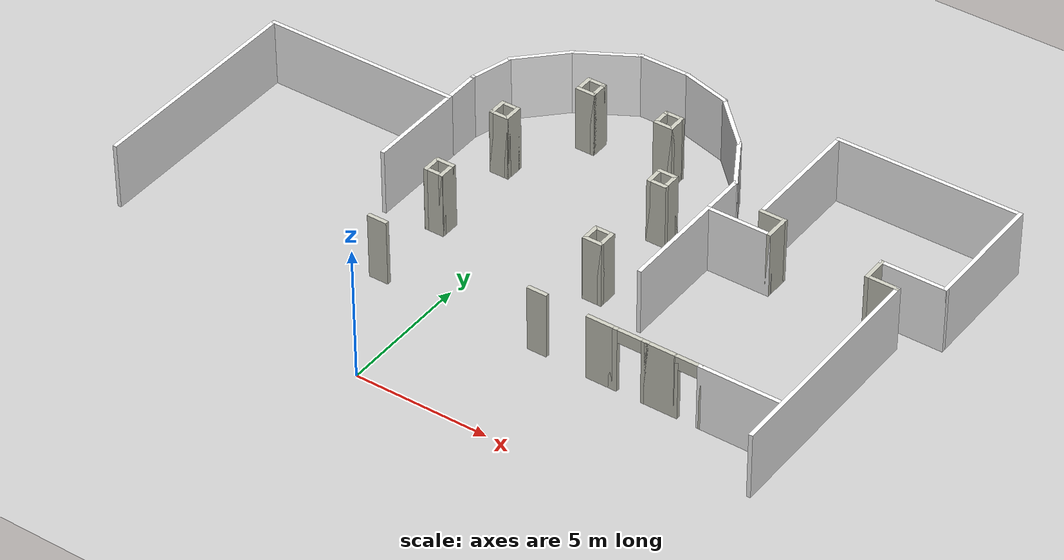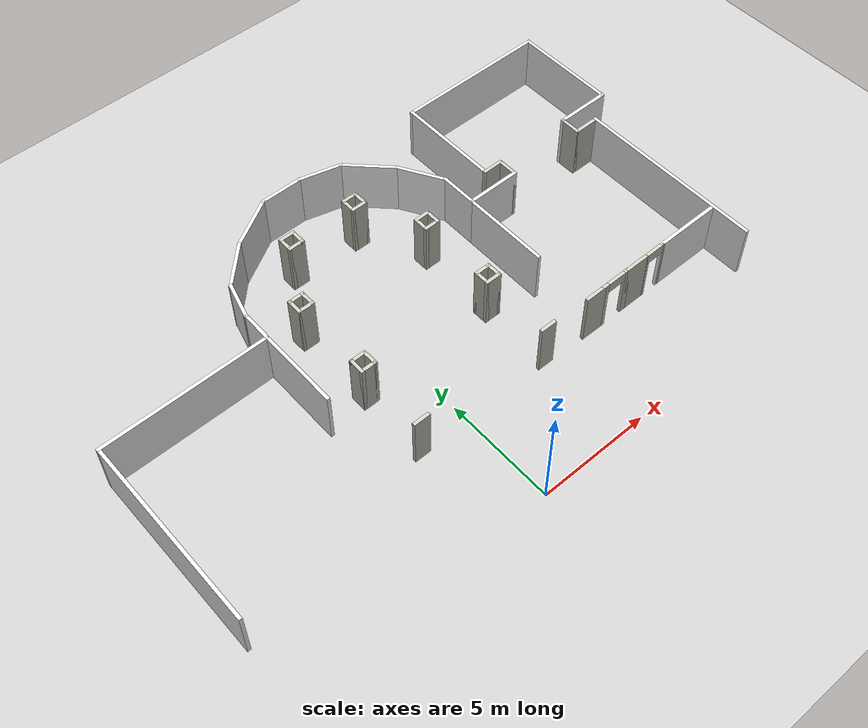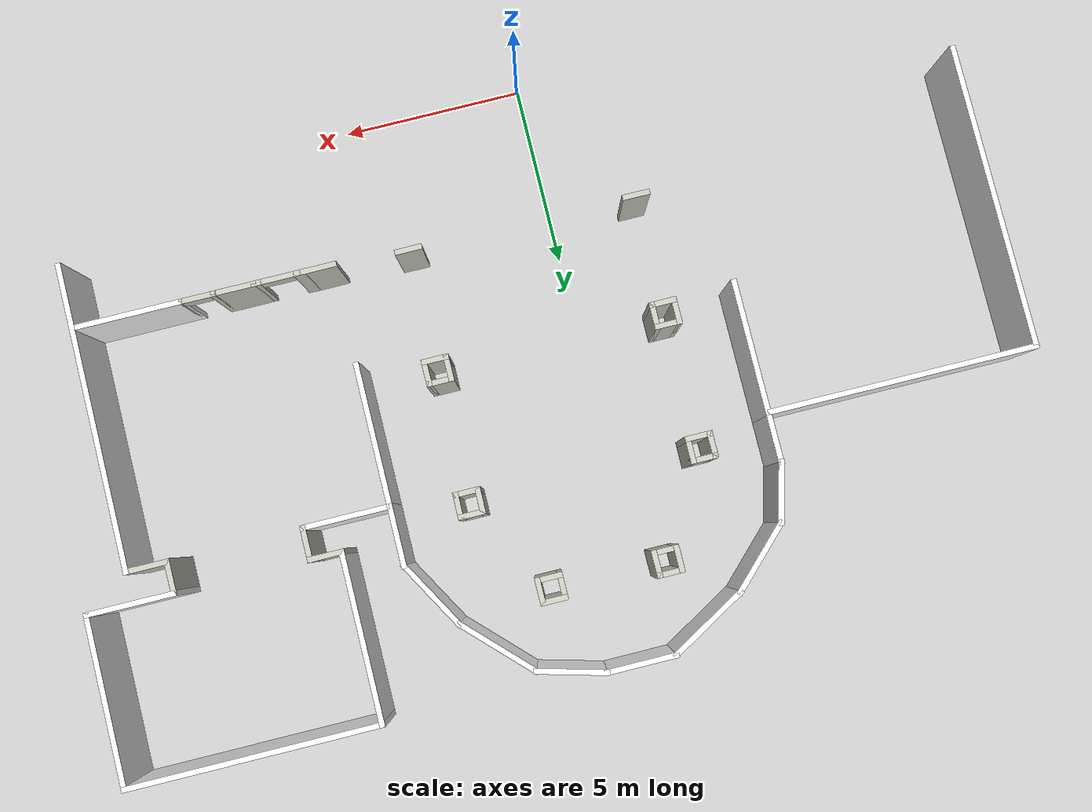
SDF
<sdf version="1.6">
 <world name="default">
  <model name="ground_plane">
   <static>1</static>
   <link name="link">
    <collision name="collision">
     <geometry><plane><normal>0 0 1</normal><size>100 100</size></plane></geometry>
     <surface><friction><ode><mu>100</mu><mu2>50</mu2></ode></friction></surface>
    </collision>
    <visual name="visual">
     <cast_shadows>0</cast_shadows>
     <geometry><plane><normal>0 0 1</normal><size>100 100</size></plane></geometry>
     <material>
      <script><uri>file://media/materials/scripts/gazebo.material</uri><name>Gazebo/Grey</name></script>
     </material>
    </visual>
   </link>
  </model>
  <model name="museum">
   <link name="Wall_0">
    <collision name="Wall_0_Collision">
     <geometry><box><size>7.5 0.15 2.5</size></box></geometry>
     <pose>0 0 1.25 0 -0 0</pose>
    </collision>
    <visual name="Wall_0_Visual">
     <pose>0 0 1.25 0 -0 0</pose>
     <geometry><box><size>7.5 0.15 2.5</size></box></geometry>
     <material>
      <script><uri>file://media/materials/scripts/gazebo.material</uri><name>Gazebo/Image15</name></script>
      <ambient>1 1 1 1</ambient>
     </material>
    </visual>
    <pose>-7.91012 10.7458 0 0 -0 0</pose>
   </link>
   <link name="Wall_1">
    <collision name="Wall_1_Collision">
     <geometry><box><size>3.75 0.15 2.5</size></box></geometry>
     <pose>0 0 1.25 0 -0 0</pose>
    </collision>
    <visual name="Wall_1_Visual">
     <pose>0 0 1.25 0 -0 0</pose>
     <geometry><box><size>3.75 0.15 2.5</size></box></geometry>
     <material>
      <script><uri>file://media/materials/scripts/gazebo.material</uri><name>Gazebo/Image22</name></script>
      <ambient>1 1 1 1</ambient>
     </material>
    </visual>
    <pose>-4.23512 8.94576 0 0 0 -1.5708</pose>
   </link>
   <link name="Wall_10">
    <collision name="Wall_10_Collision">
     <geometry><box><size>1.5 0.15 2.5</size></box></geometry>
     <pose>0 0 1.25 0 -0 0</pose>
    </collision>
    <visual name="Wall_10_Visual">
     <pose>0 0 1.25 0 -0 0</pose>
     <geometry><box><size>1.5 0.15 2.5</size></box></geometry>
     <material>
      <script><uri>file://media/materials/scripts/gazebo.material</uri><name>Gazebo/Image31</name></script>
      <ambient>1 1 1 1</ambient>
     </material>
    </visual>
    <pose>-4.23512 11.4208 0 0 -0 1.5708</pose>
   </link>
   <link name="Wall_15">
    <collision name="Wall_15_Collision">
     <geometry><box><size>1.75 0.15 2.5</size></box></geometry>
     <pose>0 0 1.25 0 -0 0</pose>
    </collision>
    <visual name="Wall_15_Visual">
     <pose>0 0 1.25 0 -0 0</pose>
     <geometry><box><size>1.75 0.15 2.5</size></box></geometry>
     <material>
      <script><uri>file://media/materials/scripts/gazebo.material</uri><name>Gazebo/Image32</name></script>
      <ambient>1 1 1 1</ambient>
     </material>
    </visual>
    <pose>-4.02806 12.8685 0 0 -0 1.309</pose>
   </link>
   <link name="Wall_16">
    <collision name="Wall_16_Collision">
     <geometry><box><size>2.25 0.15 2.5</size></box></geometry>
     <pose>0 0 1.25 0 -0 0</pose>
    </collision>
    <visual name="Wall_16_Visual">
     <pose>0 0 1.25 0 -0 0</pose>
     <geometry><box><size>2.25 0.15 2.5</size></box></geometry>
     <material>
      <script><uri>file://media/materials/scripts/gazebo.material</uri><name>Gazebo/Image33</name></script>
      <ambient>1 1 1 1</ambient>
     </material>
    </visual>
    <pose>-3.07855 14.3837 0 0 -0 0.785398</pose>
   </link>
   <link name="Wall_17">
    <collision name="Wall_17_Collision">
     <geometry><box><size>2.5 0.15 2.5</size></box></geometry>
     <pose>0 0 1.25 0 -0 0</pose>
    </collision>
    <visual name="Wall_17_Visual">
     <pose>0 0 1.25 0 -0 0</pose>
     <geometry><box><size>2.5 0.15 2.5</size></box></geometry>
     <material>
      <script><uri>file://media/materials/scripts/gazebo.material</uri><name>Gazebo/Image34</name></script>
      <ambient>1 1 1 1</ambient>
     </material>
    </visual>
    <pose>-1.3185 15.7137 0 0 -0 0.523599</pose>
   </link>
   <link name="Wall_18">
    <collision name="Wall_18_Collision">
     <geometry><box><size>2 0.15 2.5</size></box></geometry>
     <pose>0 0 1.25 0 -0 0</pose>
    </collision>
    <visual name="Wall_18_Visual">
     <pose>0 0 1.25 0 -0 0</pose>
     <geometry><box><size>2 0.15 2.5</size></box></geometry>
     <material>
      <script><uri>file://media/materials/scripts/gazebo.material</uri><name>Gazebo/Image35</name></script>
      <ambient>1 1 1 1</ambient>
     </material>
    </visual>
    <pose>0.624076 16.3012 0 0 -0 0</pose>
   </link>
   <link name="Wall_184">
    <pose>7.52862 4.1183 0 0 -0 0</pose>
    <visual name="Wall_184_Visual_0">
     <pose>-0.586918 0 1.25 0 -0 0</pose>
     <geometry><box><size>0.326163 0.15 2.5</size></box></geometry>
     <material>
      <script><uri>file://media/materials/scripts/gazebo.material</uri><name>Gazebo/PaintedWall</name></script>
      <ambient>1 1 1 1</ambient>
     </material>
    </visual>
    <collision name="Wall_184_Collision_0">
     <geometry><box><size>0.326163 0.15 2.5</size></box></geometry>
     <pose>-0.586918 0 1.25 0 -0 0</pose>
    </collision>
    <visual name="Wall_184_Visual_1">
     <pose>0.613082 0 1.25 0 -0 0</pose>
     <geometry><box><size>0.273837 0.15 2.5</size></box></geometry>
     <material>
      <script><uri>file://media/materials/scripts/gazebo.material</uri><name>Gazebo/PaintedWall</name></script>
      <ambient>1 1 1 1</ambient>
     </material>
    </visual>
    <collision name="Wall_184_Collision_1">
     <geometry><box><size>0.273837 0.15 2.5</size></box></geometry>
     <pose>0.613082 0 1.25 0 -0 0</pose>
    </collision>
    <visual name="Wall_184_Visual_2">
     <pose>0.026163 0 2.25 0 -0 0</pose>
     <geometry><box><size>0.9 0.15 0.5</size></box></geometry>
     <material>
      <script><uri>file://media/materials/scripts/gazebo.material</uri><name>Gazebo/PaintedWall</name></script>
      <ambient>1 1 1 1</ambient>
     </material>
    </visual>
    <collision name="Wall_184_Collision_2">
     <geometry><box><size>0.9 0.15 0.5</size></box></geometry>
     <pose>0.026163 0 2.25 0 -0 0</pose>
    </collision>
   </link>
   <link name="Wall_185">
    <collision name="Wall_185_Collision">
     <geometry><box><size>1.25 0.15 2.5</size></box></geometry>
     <pose>0 0 1.25 0 -0 0</pose>
    </collision>
    <visual name="Wall_185_Visual">
     <pose>0 0 1.25 0 -0 0</pose>
     <geometry><box><size>1.25 0.15 2.5</size></box></geometry>
     <material>
      <script><uri>file://media/materials/scripts/gazebo.material</uri><name>Gazebo/PaintedWall</name></script>
      <ambient>1 1 1 1</ambient>
     </material>
    </visual>
    <pose>8.75362 4.1183 0 0 -0 0</pose>
   </link>
   <link name="Wall_186">
    <pose>9.72862 4.1183 0 0 -0 0</pose>
    <visual name="Wall_186_Visual_0">
     <pose>-0.486669 0 1.25 0 -0 0</pose>
     <geometry><box><size>0.026662 0.15 2.5</size></box></geometry>
     <material>
      <script><uri>file://media/materials/scripts/gazebo.material</uri><name>Gazebo/PaintedWall</name></script>
      <ambient>1 1 1 1</ambient>
     </material>
    </visual>
    <collision name="Wall_186_Collision_0">
     <geometry><box><size>0.026662 0.15 2.5</size></box></geometry>
     <pose>-0.486669 0 1.25 0 -0 0</pose>
    </collision>
    <visual name="Wall_186_Visual_1">
     <pose>0.463331 0 1.25 0 -0 0</pose>
     <geometry><box><size>0.073338 0.15 2.5</size></box></geometry>
     <material>
      <script><uri>file://media/materials/scripts/gazebo.material</uri><name>Gazebo/PaintedWall</name></script>
      <ambient>1 1 1 1</ambient>
     </material>
    </visual>
    <collision name="Wall_186_Collision_1">
     <geometry><box><size>0.073338 0.15 2.5</size></box></geometry>
     <pose>0.463331 0 1.25 0 -0 0</pose>
    </collision>
    <visual name="Wall_186_Visual_2">
     <pose>-0.023338 0 2.25 0 -0 0</pose>
     <geometry><box><size>0.9 0.15 0.5</size></box></geometry>
     <material>
      <script><uri>file://media/materials/scripts/gazebo.material</uri><name>Gazebo/PaintedWall</name></script>
      <ambient>1 1 1 1</ambient>
     </material>
    </visual>
    <collision name="Wall_186_Collision_2">
     <geometry><box><size>0.9 0.15 0.5</size></box></geometry>
     <pose>-0.023338 0 2.25 0 -0 0</pose>
    </collision>
   </link>
   <link name="Wall_187">
    <collision name="Wall_187_Collision">
     <geometry><box><size>3 0.15 2.5</size></box></geometry>
     <pose>0 0 1.25 0 -0 0</pose>
    </collision>
    <visual name="Wall_187_Visual">
     <pose>0 0 1.25 0 -0 0</pose>
     <geometry><box><size>3 0.15 2.5</size></box></geometry>
     <material>
      <script><uri>file://media/materials/scripts/gazebo.material</uri><name>Gazebo/Image40</name></script>
      <ambient>1 1 1 1</ambient>
     </material>
    </visual>
    <pose>11.5786 4.1183 0 0 -0 0</pose>
   </link>
   <link name="Wall_189">
    <collision name="Wall_189_Collision">
     <geometry><box><size>4 0.15 2.5</size></box></geometry>
     <pose>0 0 1.25 0 -0 0</pose>
    </collision>
    <visual name="Wall_189_Visual">
     <pose>0 0 1.25 0 -0 0</pose>
     <geometry><box><size>4 0.15 2.5</size></box></geometry>
     <material>
      <script><uri>file://media/materials/scripts/gazebo.material</uri><name>Gazebo/Image21</name></script>
      <ambient>1 1 1 1</ambient>
     </material>
    </visual>
    <pose>6.04774 8.81699 0 0 0 -1.5708</pose>
   </link>
   <link name="Wall_19">
    <collision name="Wall_19_Collision">
     <geometry><box><size>2 0.15 2.5</size></box></geometry>
     <pose>0 0 1.25 0 -0 0</pose>
    </collision>
    <visual name="Wall_19_Visual">
     <pose>0 0 1.25 0 -0 0</pose>
     <geometry><box><size>2 0.15 2.5</size></box></geometry>
     <material>
      <script><uri>file://media/materials/scripts/gazebo.material</uri><name>Gazebo/Image36</name></script>
      <ambient>1 1 1 1</ambient>
     </material>
    </visual>
    <pose>2.44256 16.0618 0 0 0 -0.261799</pose>
   </link>
   <link name="Wall_20">
    <collision name="Wall_20_Collision">
     <geometry><box><size>2.5 0.15 2.5</size></box></geometry>
     <pose>0 0 1.25 0 -0 0</pose>
    </collision>
    <visual name="Wall_20_Visual">
     <pose>0 0 1.25 0 -0 0</pose>
     <geometry><box><size>2.5 0.15 2.5</size></box></geometry>
     <material>
      <script><uri>file://media/materials/scripts/gazebo.material</uri><name>Gazebo/Image37</name></script>
      <ambient>1 1 1 1</ambient>
     </material>
    </visual>
    <pose>4.16689 14.9915 0 0 0 -0.785398</pose>
   </link>
   <link name="Wall_202">
    <collision name="Wall_202_Collision">
     <geometry><box><size>0.75 0.15 2.5</size></box></geometry>
     <pose>0 0 1.25 0 -0 0</pose>
    </collision>
    <visual name="Wall_202_Visual">
     <pose>0 0 1.25 0 -0 0</pose>
     <geometry><box><size>0.75 0.15 2.5</size></box></geometry>
     <material>
      <script><uri>file://media/materials/scripts/gazebo.material</uri><name>Gazebo/PaintedWall</name></script>
      <ambient>1 1 1 1</ambient>
     </material>
    </visual>
    <pose>-2.28448 4.2343 0 0 -0 0</pose>
   </link>
   <link name="Wall_207">
    <collision name="Wall_207_Collision">
     <geometry><box><size>0.75 0.15 2.5</size></box></geometry>
     <pose>0 0 1.25 0 -0 0</pose>
    </collision>
    <visual name="Wall_207_Visual">
     <pose>0 0 1.25 0 -0 0</pose>
     <geometry><box><size>0.75 0.15 2.5</size></box></geometry>
     <material>
      <script><uri>file://media/materials/scripts/gazebo.material</uri><name>Gazebo/PaintedWall</name></script>
      <ambient>1 1 1 1</ambient>
     </material>
    </visual>
    <pose>3.98509 4.20821 0 0 -0 0</pose>
   </link>
   <link name="Wall_21">
    <collision name="Wall_21_Collision">
     <geometry><box><size>2.25 0.15 2.5</size></box></geometry>
     <pose>0 0 1.25 0 -0 0</pose>
    </collision>
    <visual name="Wall_21_Visual">
     <pose>0 0 1.25 0 -0 0</pose>
     <geometry><box><size>2.25 0.15 2.5</size></box></geometry>
     <material>
      <script><uri>file://media/materials/scripts/gazebo.material</uri><name>Gazebo/Image38</name></script>
      <ambient>1 1 1 1</ambient>
     </material>
    </visual>
    <pose>5.52274 13.2513 0 0 0 -1.0472</pose>
   </link>
   <link name="Wall_212">
    <collision name="Wall_212_Collision">
     <geometry><box><size>0.75 0.15 2.5</size></box></geometry>
     <pose>0 0 1.25 0 -0 0</pose>
    </collision>
    <visual name="Wall_212_Visual">
     <pose>0 0 1.25 0 -0 0</pose>
     <geometry><box><size>0.75 0.15 2.5</size></box></geometry>
     <material>
      <script><uri>file://media/materials/scripts/gazebo.material</uri><name>Gazebo/PaintedWall</name></script>
      <ambient>1 1 1 1</ambient>
     </material>
    </visual>
    <pose>-2.25839 7.8256 0 0 -0 0</pose>
   </link>
   <link name="Wall_213">
    <collision name="Wall_213_Collision">
     <geometry><box><size>0.75 0.15 2.5</size></box></geometry>
     <pose>0 0 1.25 0 -0 0</pose>
    </collision>
    <visual name="Wall_213_Visual">
     <pose>0 0 1.25 0 -0 0</pose>
     <geometry><box><size>0.75 0.15 2.5</size></box></geometry>
     <material>
      <script><uri>file://media/materials/scripts/gazebo.material</uri><name>Gazebo/PaintedWall</name></script>
      <ambient>1 1 1 1</ambient>
     </material>
    </visual>
    <pose>-1.95839 7.5256 0 0 0 -1.5708</pose>
   </link>
   <link name="Wall_214">
    <collision name="Wall_214_Collision">
     <geometry><box><size>0.75 0.15 2.5</size></box></geometry>
     <pose>0 0 1.25 0 -0 0</pose>
    </collision>
    <visual name="Wall_214_Visual">
     <pose>0 0 1.25 0 -0 0</pose>
     <geometry><box><size>0.75 0.15 2.5</size></box></geometry>
     <material>
      <script><uri>file://media/materials/scripts/gazebo.material</uri><name>Gazebo/PaintedWall</name></script>
      <ambient>1 1 1 1</ambient>
     </material>
    </visual>
    <pose>-2.25839 7.2256 0 0 -0 3.14159</pose>
   </link>
   <link name="Wall_215">
    <collision name="Wall_215_Collision">
     <geometry><box><size>0.75 0.15 2.5</size></box></geometry>
     <pose>0 0 1.25 0 -0 0</pose>
    </collision>
    <visual name="Wall_215_Visual">
     <pose>0 0 1.25 0 -0 0</pose>
     <geometry><box><size>0.75 0.15 2.5</size></box></geometry>
     <material>
      <script><uri>file://media/materials/scripts/gazebo.material</uri><name>Gazebo/PaintedWall</name></script>
      <ambient>1 1 1 1</ambient>
     </material>
    </visual>
    <pose>-2.55839 7.5256 0 0 -0 1.5708</pose>
   </link>
   <link name="Wall_217">
    <collision name="Wall_217_Collision">
     <geometry><box><size>0.75 0.15 2.5</size></box></geometry>
     <pose>0 0 1.25 0 -0 0</pose>
    </collision>
    <visual name="Wall_217_Visual">
     <pose>0 0 1.25 0 -0 0</pose>
     <geometry><box><size>0.75 0.15 2.5</size></box></geometry>
     <material>
      <script><uri>file://media/materials/scripts/gazebo.material</uri><name>Gazebo/PaintedWall</name></script>
      <ambient>1 1 1 1</ambient>
     </material>
    </visual>
    <pose>3.98509 7.85169 0 0 -0 0</pose>
   </link>
   <link name="Wall_218">
    <collision name="Wall_218_Collision">
     <geometry><box><size>0.75 0.15 2.5</size></box></geometry>
     <pose>0 0 1.25 0 -0 0</pose>
    </collision>
    <visual name="Wall_218_Visual">
     <pose>0 0 1.25 0 -0 0</pose>
     <geometry><box><size>0.75 0.15 2.5</size></box></geometry>
     <material>
      <script><uri>file://media/materials/scripts/gazebo.material</uri><name>Gazebo/PaintedWall</name></script>
      <ambient>1 1 1 1</ambient>
     </material>
    </visual>
    <pose>4.28509 7.55169 0 0 0 -1.5708</pose>
   </link>
   <link name="Wall_219">
    <collision name="Wall_219_Collision">
     <geometry><box><size>0.75 0.15 2.5</size></box></geometry>
     <pose>0 0 1.25 0 -0 0</pose>
    </collision>
    <visual name="Wall_219_Visual">
     <pose>0 0 1.25 0 -0 0</pose>
     <geometry><box><size>0.75 0.15 2.5</size></box></geometry>
     <material>
      <script><uri>file://media/materials/scripts/gazebo.material</uri><name>Gazebo/PaintedWall</name></script>
      <ambient>1 1 1 1</ambient>
     </material>
    </visual>
    <pose>3.98509 7.25169 0 0 -0 3.14159</pose>
   </link>
   <link name="Wall_22">
    <collision name="Wall_22_Collision">
     <geometry><box><size>1.75 0.15 2.5</size></box></geometry>
     <pose>0 0 1.25 0 -0 0</pose>
    </collision>
    <visual name="Wall_22_Visual">
     <pose>0 0 1.25 0 -0 0</pose>
     <geometry><box><size>1.75 0.15 2.5</size></box></geometry>
     <material>
      <script><uri>file://media/materials/scripts/gazebo.material</uri><name>Gazebo/Image39</name></script>
      <ambient>1 1 1 1</ambient>
     </material>
    </visual>
    <pose>6.04774 11.542 0 0 0 -1.5708</pose>
   </link>
   <link name="Wall_220">
    <collision name="Wall_220_Collision">
     <geometry><box><size>0.75 0.15 2.5</size></box></geometry>
     <pose>0 0 1.25 0 -0 0</pose>
    </collision>
    <visual name="Wall_220_Visual">
     <pose>0 0 1.25 0 -0 0</pose>
     <geometry><box><size>0.75 0.15 2.5</size></box></geometry>
     <material>
      <script><uri>file://media/materials/scripts/gazebo.material</uri><name>Gazebo/PaintedWall</name></script>
      <ambient>1 1 1 1</ambient>
     </material>
    </visual>
    <pose>3.68509 7.55169 0 0 -0 1.5708</pose>
   </link>
   <link name="Wall_222">
    <collision name="Wall_222_Collision">
     <geometry><box><size>0.75 0.15 2.5</size></box></geometry>
     <pose>0 0 1.25 0 -0 0</pose>
    </collision>
    <visual name="Wall_222_Visual">
     <pose>0 0 1.25 0 -0 0</pose>
     <geometry><box><size>0.75 0.15 2.5</size></box></geometry>
     <material>
      <script><uri>file://media/materials/scripts/gazebo.material</uri><name>Gazebo/PaintedWall</name></script>
      <ambient>1 1 1 1</ambient>
     </material>
    </visual>
    <pose>4.00248 11.4691 0 0 -0 0</pose>
   </link>
   <link name="Wall_223">
    <collision name="Wall_223_Collision">
     <geometry><box><size>0.75 0.15 2.5</size></box></geometry>
     <pose>0 0 1.25 0 -0 0</pose>
    </collision>
    <visual name="Wall_223_Visual">
     <pose>0 0 1.25 0 -0 0</pose>
     <geometry><box><size>0.75 0.15 2.5</size></box></geometry>
     <material>
      <script><uri>file://media/materials/scripts/gazebo.material</uri><name>Gazebo/PaintedWall</name></script>
      <ambient>1 1 1 1</ambient>
     </material>
    </visual>
    <pose>4.30248 11.1691 0 0 0 -1.5708</pose>
   </link>
   <link name="Wall_224">
    <collision name="Wall_224_Collision">
     <geometry><box><size>0.75 0.15 2.5</size></box></geometry>
     <pose>0 0 1.25 0 -0 0</pose>
    </collision>
    <visual name="Wall_224_Visual">
     <pose>0 0 1.25 0 -0 0</pose>
     <geometry><box><size>0.75 0.15 2.5</size></box></geometry>
     <material>
      <script><uri>file://media/materials/scripts/gazebo.material</uri><name>Gazebo/PaintedWall</name></script>
      <ambient>1 1 1 1</ambient>
     </material>
    </visual>
    <pose>4.00248 10.8691 0 0 -0 3.14159</pose>
   </link>
   <link name="Wall_225">
    <collision name="Wall_225_Collision">
     <geometry><box><size>0.75 0.15 2.5</size></box></geometry>
     <pose>0 0 1.25 0 -0 0</pose>
    </collision>
    <visual name="Wall_225_Visual">
     <pose>0 0 1.25 0 -0 0</pose>
     <geometry><box><size>0.75 0.15 2.5</size></box></geometry>
     <material>
      <script><uri>file://media/materials/scripts/gazebo.material</uri><name>Gazebo/PaintedWall</name></script>
      <ambient>1 1 1 1</ambient>
     </material>
    </visual>
    <pose>3.70248 11.1691 0 0 -0 1.5708</pose>
   </link>
   <link name="Wall_227">
    <collision name="Wall_227_Collision">
     <geometry><box><size>0.75 0.15 2.5</size></box></geometry>
     <pose>0 0 1.25 0 -0 0</pose>
    </collision>
    <visual name="Wall_227_Visual">
     <pose>0 0 1.25 0 -0 0</pose>
     <geometry><box><size>0.75 0.15 2.5</size></box></geometry>
     <material>
      <script><uri>file://media/materials/scripts/gazebo.material</uri><name>Gazebo/PaintedWall</name></script>
      <ambient>1 1 1 1</ambient>
     </material>
    </visual>
    <pose>-2.29317 11.5126 0 0 -0 0</pose>
   </link>
   <link name="Wall_228">
    <collision name="Wall_228_Collision">
     <geometry><box><size>0.75 0.15 2.5</size></box></geometry>
     <pose>0 0 1.25 0 -0 0</pose>
    </collision>
    <visual name="Wall_228_Visual">
     <pose>0 0 1.25 0 -0 0</pose>
     <geometry><box><size>0.75 0.15 2.5</size></box></geometry>
     <material>
      <script><uri>file://media/materials/scripts/gazebo.material</uri><name>Gazebo/PaintedWall</name></script>
      <ambient>1 1 1 1</ambient>
     </material>
    </visual>
    <pose>-1.99317 11.2126 0 0 0 -1.5708</pose>
   </link>
   <link name="Wall_229">
    <collision name="Wall_229_Collision">
     <geometry><box><size>0.75 0.15 2.5</size></box></geometry>
     <pose>0 0 1.25 0 -0 0</pose>
    </collision>
    <visual name="Wall_229_Visual">
     <pose>0 0 1.25 0 -0 0</pose>
     <geometry><box><size>0.75 0.15 2.5</size></box></geometry>
     <material>
      <script><uri>file://media/materials/scripts/gazebo.material</uri><name>Gazebo/PaintedWall</name></script>
      <ambient>1 1 1 1</ambient>
     </material>
    </visual>
    <pose>-2.29317 10.9126 0 0 -0 3.14159</pose>
   </link>
   <link name="Wall_23">
    <collision name="Wall_23_Collision">
     <geometry><box><size>2.5 0.15 2.5</size></box></geometry>
     <pose>0 0 1.25 0 -0 0</pose>
    </collision>
    <visual name="Wall_23_Visual">
     <pose>0 0 1.25 0 -0 0</pose>
     <geometry><box><size>2.5 0.15 2.5</size></box></geometry>
     <material>
      <script><uri>file://media/materials/scripts/gazebo.material</uri><name>Gazebo/Image28</name></script>
      <ambient>1 1 1 1</ambient>
     </material>
    </visual>
    <pose>7.22274 10.742 0 0 -0 0</pose>
   </link>
   <link name="Wall_230">
    <collision name="Wall_230_Collision">
     <geometry><box><size>0.75 0.15 2.5</size></box></geometry>
     <pose>0 0 1.25 0 -0 0</pose>
    </collision>
    <visual name="Wall_230_Visual">
     <pose>0 0 1.25 0 -0 0</pose>
     <geometry><box><size>0.75 0.15 2.5</size></box></geometry>
     <material>
      <script><uri>file://media/materials/scripts/gazebo.material</uri><name>Gazebo/PaintedWall</name></script>
      <ambient>1 1 1 1</ambient>
     </material>
    </visual>
    <pose>-2.59317 11.2126 0 0 -0 1.5708</pose>
   </link>
   <link name="Wall_232">
    <collision name="Wall_232_Collision">
     <geometry><box><size>0.75 0.15 2.5</size></box></geometry>
     <pose>0 0 1.25 0 -0 0</pose>
    </collision>
    <visual name="Wall_232_Visual">
     <pose>0 0 1.25 0 -0 0</pose>
     <geometry><box><size>0.75 0.15 2.5</size></box></geometry>
     <material>
      <script><uri>file://media/materials/scripts/gazebo.material</uri><name>Gazebo/PaintedWall</name></script>
      <ambient>1 1 1 1</ambient>
     </material>
    </visual>
    <pose>-0.693172 14.1995 0 0 -0 0</pose>
   </link>
   <link name="Wall_233">
    <collision name="Wall_233_Collision">
     <geometry><box><size>0.75 0.15 2.5</size></box></geometry>
     <pose>0 0 1.25 0 -0 0</pose>
    </collision>
    <visual name="Wall_233_Visual">
     <pose>0 0 1.25 0 -0 0</pose>
     <geometry><box><size>0.75 0.15 2.5</size></box></geometry>
     <material>
      <script><uri>file://media/materials/scripts/gazebo.material</uri><name>Gazebo/PaintedWall</name></script>
      <ambient>1 1 1 1</ambient>
     </material>
    </visual>
    <pose>-0.393171 13.8995 0 0 0 -1.5708</pose>
   </link>
   <link name="Wall_234">
    <collision name="Wall_234_Collision">
     <geometry><box><size>0.75 0.15 2.5</size></box></geometry>
     <pose>0 0 1.25 0 -0 0</pose>
    </collision>
    <visual name="Wall_234_Visual">
     <pose>0 0 1.25 0 -0 0</pose>
     <geometry><box><size>0.75 0.15 2.5</size></box></geometry>
     <material>
      <script><uri>file://media/materials/scripts/gazebo.material</uri><name>Gazebo/PaintedWall</name></script>
      <ambient>1 1 1 1</ambient>
     </material>
    </visual>
    <pose>-0.693172 13.5995 0 0 -0 3.14159</pose>
   </link>
   <link name="Wall_235">
    <collision name="Wall_235_Collision">
     <geometry><box><size>0.75 0.15 2.5</size></box></geometry>
     <pose>0 0 1.25 0 -0 0</pose>
    </collision>
    <visual name="Wall_235_Visual">
     <pose>0 0 1.25 0 -0 0</pose>
     <geometry><box><size>0.75 0.15 2.5</size></box></geometry>
     <material>
      <script><uri>file://media/materials/scripts/gazebo.material</uri><name>Gazebo/PaintedWall</name></script>
      <ambient>1 1 1 1</ambient>
     </material>
    </visual>
    <pose>-0.993171 13.8995 0 0 -0 1.5708</pose>
   </link>
   <link name="Wall_24">
    <collision name="Wall_24_Collision">
     <geometry><box><size>1 0.15 2.5</size></box></geometry>
     <pose>0 0 1.25 0 -0 0</pose>
    </collision>
    <visual name="Wall_24_Visual">
     <pose>0 0 1.25 0 -0 0</pose>
     <geometry><box><size>1 0.15 2.5</size></box></geometry>
     <material>
      <script><uri>file://media/materials/scripts/gazebo.material</uri><name>Gazebo/PaintedWall</name></script>
      <ambient>1 1 1 1</ambient>
     </material>
    </visual>
    <pose>8.39774 11.167 0 0 -0 1.5708</pose>
   </link>
   <link name="Wall_242">
    <collision name="Wall_242_Collision">
     <geometry><box><size>0.75 0.15 2.5</size></box></geometry>
     <pose>0 0 1.25 0 -0 0</pose>
    </collision>
    <visual name="Wall_242_Visual">
     <pose>0 0 1.25 0 -0 0</pose>
     <geometry><box><size>0.75 0.15 2.5</size></box></geometry>
     <material>
      <script><uri>file://media/materials/scripts/gazebo.material</uri><name>Gazebo/PaintedWall</name></script>
      <ambient>1 1 1 1</ambient>
     </material>
    </visual>
    <pose>2.44596 14.156 0 0 -0 0</pose>
   </link>
   <link name="Wall_243">
    <collision name="Wall_243_Collision">
     <geometry><box><size>0.75 0.15 2.5</size></box></geometry>
     <pose>0 0 1.25 0 -0 0</pose>
    </collision>
    <visual name="Wall_243_Visual">
     <pose>0 0 1.25 0 -0 0</pose>
     <geometry><box><size>0.75 0.15 2.5</size></box></geometry>
     <material>
      <script><uri>file://media/materials/scripts/gazebo.material</uri><name>Gazebo/PaintedWall</name></script>
      <ambient>1 1 1 1</ambient>
     </material>
    </visual>
    <pose>2.74596 13.856 0 0 0 -1.5708</pose>
   </link>
   <link name="Wall_244">
    <collision name="Wall_244_Collision">
     <geometry><box><size>0.75 0.15 2.5</size></box></geometry>
     <pose>0 0 1.25 0 -0 0</pose>
    </collision>
    <visual name="Wall_244_Visual">
     <pose>0 0 1.25 0 -0 0</pose>
     <geometry><box><size>0.75 0.15 2.5</size></box></geometry>
     <material>
      <script><uri>file://media/materials/scripts/gazebo.material</uri><name>Gazebo/PaintedWall</name></script>
      <ambient>1 1 1 1</ambient>
     </material>
    </visual>
    <pose>2.44596 13.556 0 0 -0 3.14159</pose>
   </link>
   <link name="Wall_245">
    <collision name="Wall_245_Collision">
     <geometry><box><size>0.75 0.15 2.5</size></box></geometry>
     <pose>0 0 1.25 0 -0 0</pose>
    </collision>
    <visual name="Wall_245_Visual">
     <pose>0 0 1.25 0 -0 0</pose>
     <geometry><box><size>0.75 0.15 2.5</size></box></geometry>
     <material>
      <script><uri>file://media/materials/scripts/gazebo.material</uri><name>Gazebo/PaintedWall</name></script>
      <ambient>1 1 1 1</ambient>
     </material>
    </visual>
    <pose>2.14596 13.856 0 0 -0 1.5708</pose>
   </link>
   <link name="Wall_25">
    <collision name="Wall_25_Collision">
     <geometry><box><size>1 0.15 2.5</size></box></geometry>
     <pose>0 0 1.25 0 -0 0</pose>
    </collision>
    <visual name="Wall_25_Visual">
     <pose>0 0 1.25 0 -0 0</pose>
     <geometry><box><size>1 0.15 2.5</size></box></geometry>
     <material>
      <script><uri>file://media/materials/scripts/gazebo.material</uri><name>Gazebo/PaintedWall</name></script>
      <ambient>1 1 1 1</ambient>
     </material>
    </visual>
    <pose>7.97274 11.592 0 0 -0 3.14159</pose>
   </link>
   <link name="Wall_250">
    <collision name="Wall_250_Collision">
     <geometry><box><size>1 0.15 2.5</size></box></geometry>
     <pose>0 0 1.25 0 -0 0</pose>
    </collision>
    <visual name="Wall_250_Visual">
     <pose>0 0 1.25 0 -0 0</pose>
     <geometry><box><size>1 0.15 2.5</size></box></geometry>
     <material>
      <script><uri>file://media/materials/scripts/gazebo.material</uri><name>Gazebo/PaintedWall</name></script>
      <ambient>1 1 1 1</ambient>
     </material>
    </visual>
    <pose>6.42862 4.1183 0 0 -0 3.14159</pose>
   </link>
   <link name="Wall_26">
    <collision name="Wall_26_Collision">
     <geometry><box><size>4.75 0.15 2.5</size></box></geometry>
     <pose>0 0 1.25 0 -0 0</pose>
    </collision>
    <visual name="Wall_26_Visual">
     <pose>0 0 1.25 0 -0 0</pose>
     <geometry><box><size>4.75 0.15 2.5</size></box></geometry>
     <material>
      <script><uri>file://media/materials/scripts/gazebo.material</uri><name>Gazebo/Image18</name></script>
      <ambient>1 1 1 1</ambient>
     </material>
    </visual>
    <pose>7.54774 13.892 0 0 -0 1.5708</pose>
   </link>
   <link name="Wall_27">
    <collision name="Wall_27_Collision">
     <geometry><box><size>7 0.15 2.5</size></box></geometry>
     <pose>0 0 1.25 0 -0 0</pose>
    </collision>
    <visual name="Wall_27_Visual">
     <pose>0 0 1.25 0 -0 0</pose>
     <geometry><box><size>7 0.15 2.5</size></box></geometry>
     <material>
      <script><uri>file://media/materials/scripts/gazebo.material</uri><name>Gazebo/Image17</name></script>
      <ambient>1 1 1 1</ambient>
     </material>
    </visual>
    <pose>10.9727 16.192 0 0 -0 0</pose>
   </link>
   <link name="Wall_28">
    <collision name="Wall_28_Collision">
     <geometry><box><size>4.75 0.15 2.5</size></box></geometry>
     <pose>0 0 1.25 0 -0 0</pose>
    </collision>
    <visual name="Wall_28_Visual">
     <pose>0 0 1.25 0 -0 0</pose>
     <geometry><box><size>4.75 0.15 2.5</size></box></geometry>
     <material>
      <script><uri>file://media/materials/scripts/gazebo.material</uri><name>Gazebo/Image19</name></script>
      <ambient>1 1 1 1</ambient>
     </material>
    </visual>
    <pose>14.3977 13.892 0 0 0 -1.5708</pose>
   </link>
   <link name="Wall_29">
    <collision name="Wall_29_Collision">
     <geometry><box><size>2.5 0.15 2.5</size></box></geometry>
     <pose>0 0 1.25 0 -0 0</pose>
    </collision>
    <visual name="Wall_29_Visual">
     <pose>0 0 1.25 0 -0 0</pose>
     <geometry><box><size>2.5 0.15 2.5</size></box></geometry>
     <material>
      <script><uri>file://media/materials/scripts/gazebo.material</uri><name>Gazebo/Image29</name></script>
      <ambient>1 1 1 1</ambient>
     </material>
    </visual>
    <pose>13.2227 11.592 0 0 -0 3.14159</pose>
   </link>
   <link name="Wall_30">
    <collision name="Wall_30_Collision">
     <geometry><box><size>1 0.15 2.5</size></box></geometry>
     <pose>0 0 1.25 0 -0 0</pose>
    </collision>
    <visual name="Wall_30_Visual">
     <pose>0 0 1.25 0 -0 0</pose>
     <geometry><box><size>1 0.15 2.5</size></box></geometry>
     <material>
      <script><uri>file://media/materials/scripts/gazebo.material</uri><name>Gazebo/PaintedWall</name></script>
      <ambient>1 1 1 1</ambient>
     </material>
    </visual>
    <pose>12.0477 11.167 0 0 0 -1.5708</pose>
   </link>
   <link name="Wall_31">
    <collision name="Wall_31_Collision">
     <geometry><box><size>1.25 0.15 2.5</size></box></geometry>
     <pose>0 0 1.25 0 -0 0</pose>
    </collision>
    <visual name="Wall_31_Visual">
     <pose>0 0 1.25 0 -0 0</pose>
     <geometry><box><size>1.25 0.15 2.5</size></box></geometry>
     <material>
      <script><uri>file://media/materials/scripts/gazebo.material</uri><name>Gazebo/PaintedWall</name></script>
      <ambient>1 1 1 1</ambient>
     </material>
    </visual>
    <pose>12.5977 10.742 0 0 -0 0</pose>
   </link>
   <link name="Wall_34">
    <collision name="Wall_34_Collision">
     <geometry><box><size>8.5 0.15 2.5</size></box></geometry>
     <pose>0 0 1.25 0 -0 0</pose>
    </collision>
    <visual name="Wall_34_Visual">
     <pose>0 0 1.25 0 -0 0</pose>
     <geometry><box><size>8.5 0.15 2.5</size></box></geometry>
     <material>
      <script><uri>file://media/materials/scripts/gazebo.material</uri><name>Gazebo/Image20</name></script>
      <ambient>1 1 1 1</ambient>
     </material>
    </visual>
    <pose>13.1477 6.56699 0 0 0 -1.5708</pose>
   </link>
   <link name="Wall_6">
    <collision name="Wall_6_Collision">
     <geometry><box><size>8.5 0.15 2.5</size></box></geometry>
     <pose>0 0 1.25 0 -0 0</pose>
    </collision>
    <visual name="Wall_6_Visual">
     <pose>0 0 1.25 0 -0 0</pose>
     <geometry><box><size>8.5 0.15 2.5</size></box></geometry>
     <material>
      <script><uri>file://media/materials/scripts/gazebo.material</uri><name>Gazebo/Image23</name></script>
      <ambient>1 1 1 1</ambient>
     </material>
    </visual>
    <pose>-11.5851 6.57076 0 0 0 -1.5708</pose>
   </link>
   <static>1</static>
  </model>
 </world>
</sdf>
